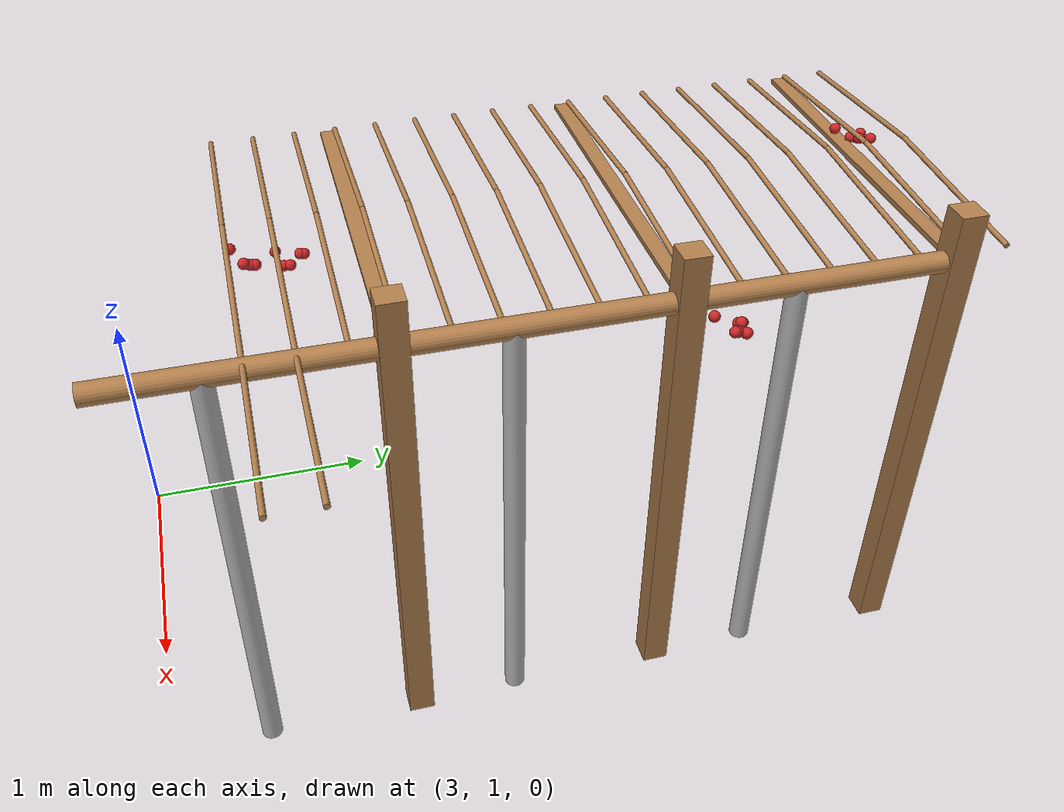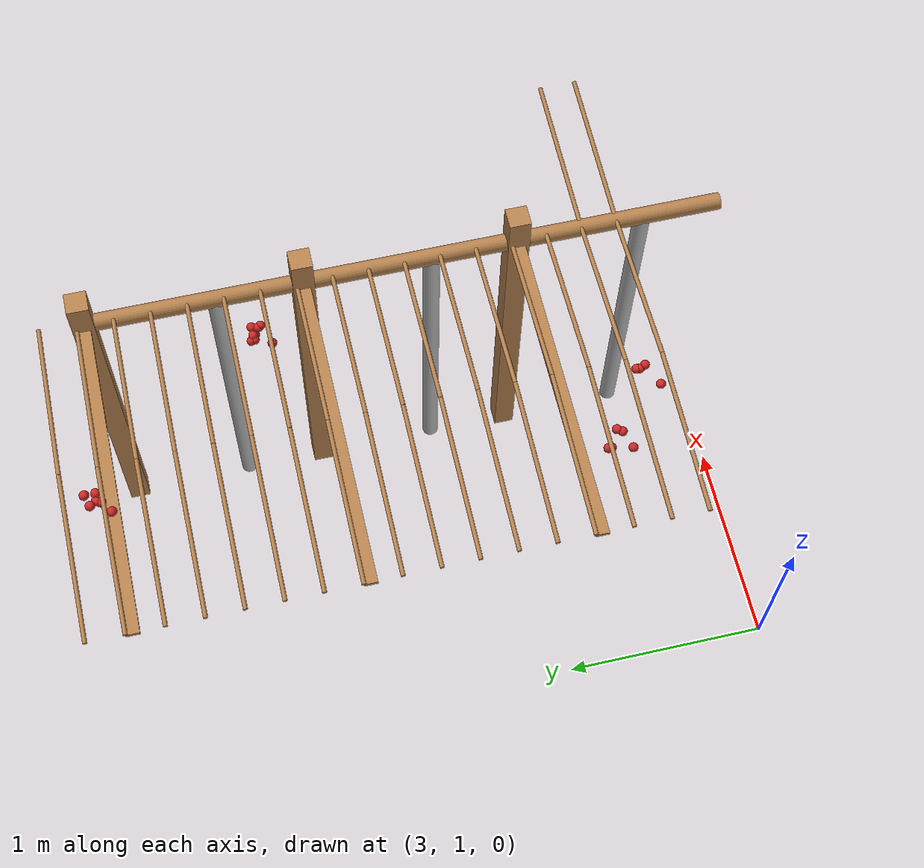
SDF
<sdf version="1.4">
 <model name="pergola">
  <include><name>post_35</name><pose>4.5 2.0 0 0 0 0</pose><uri>model://post</uri></include>
  <include><name>post_36</name><pose>4.5 3.0 0 0 0 0</pose><uri>model://post</uri></include>
  <include><name>post_37</name><pose>4.5 4.0 0 0 0 0</pose><uri>model://post</uri></include>
  <link name="beam_24">
   <pose>3.75 2.0 1.81 0 0 0</pose>
   <collision name="collision"><geometry><box><size>1.5 0.06 0.02</size></box></geometry></collision>
   <visual name="visual">
    <geometry><box><size>1.5 0.06 0.02</size></box></geometry>
    <material><script><name>Gazebo/Wood</name></script></material>
   </visual>
   <inertial>
    <mass>5</mass>
    <inertia>
     <ixx>0.0016666666666666668</ixx>
     <ixy>0.0</ixy>
     <ixz>0.0</ixz>
     <iyy>0.9390000000000001</iyy>
     <iyz>0.0</iyz>
     <izz>0.9376666666666665</izz>
    </inertia>
   </inertial>
  </link>
  <link name="beam_25">
   <pose>3.75 3.0 1.81 0 0 0</pose>
   <collision name="collision"><geometry><box><size>1.5 0.06 0.02</size></box></geometry></collision>
   <visual name="visual">
    <geometry><box><size>1.5 0.06 0.02</size></box></geometry>
    <material><script><name>Gazebo/Wood</name></script></material>
   </visual>
   <inertial>
    <mass>5</mass>
    <inertia>
     <ixx>0.0016666666666666668</ixx>
     <ixy>0.0</ixy>
     <ixz>0.0</ixz>
     <iyy>0.9390000000000001</iyy>
     <iyz>0.0</iyz>
     <izz>0.9376666666666665</izz>
    </inertia>
   </inertial>
  </link>
  <link name="beam_26">
   <pose>3.75 4.0 1.81 0 0 0</pose>
   <collision name="collision"><geometry><box><size>1.5 0.06 0.02</size></box></geometry></collision>
   <visual name="visual">
    <geometry><box><size>1.5 0.06 0.02</size></box></geometry>
    <material><script><name>Gazebo/Wood</name></script></material>
   </visual>
   <inertial>
    <mass>5</mass>
    <inertia>
     <ixx>0.0016666666666666668</ixx>
     <ixy>0.0</ixy>
     <ixz>0.0</ixz>
     <iyy>0.9390000000000001</iyy>
     <iyz>0.0</iyz>
     <izz>0.9376666666666665</izz>
    </inertia>
   </inertial>
  </link>
  <include><name>tree_31</name><pose>4.5 1.4 0 0 0 0</pose><uri>model://tree_trunk</uri></include>
  <include><name>tree_32</name><pose>4.5 2.4 0 0 0 0</pose><uri>model://tree_trunk</uri></include>
  <include><name>tree_33</name><pose>4.5 3.4 0 0 0 0</pose><uri>model://tree_trunk</uri></include>
  <link name="baseBranch_31">
   <pose>4.5 1.5 1.8 1.5707963267948966 0 0</pose>
   <collision name="collision">
    <geometry><cylinder><radius>0.04</radius><length>0.94</length></cylinder></geometry>
   </collision>
   <visual name="visual">
    <geometry><cylinder><radius>0.04</radius><length>0.94</length></cylinder></geometry>
    <material><script><name>Gazebo/WoodFloor</name></script></material>
   </visual>
   <inertial>
    <mass>10</mass>
    <inertia>
     <ixx>0.7403333333333334</ixx>
     <ixy>0.0</ixy>
     <ixz>0.0</ixz>
     <iyy>0.7403333333333334</iyy>
     <iyz>0.0</iyz>
     <izz>0.008</izz>
    </inertia>
   </inertial>
  </link>
  <link name="baseBranch_32">
   <pose>4.5 2.5 1.8 1.5707963267948966 0 0</pose>
   <collision name="collision">
    <geometry><cylinder><radius>0.04</radius><length>0.94</length></cylinder></geometry>
   </collision>
   <visual name="visual">
    <geometry><cylinder><radius>0.04</radius><length>0.94</length></cylinder></geometry>
    <material><script><name>Gazebo/WoodFloor</name></script></material>
   </visual>
   <inertial>
    <mass>10</mass>
    <inertia>
     <ixx>0.7403333333333334</ixx>
     <ixy>0.0</ixy>
     <ixz>0.0</ixz>
     <iyy>0.7403333333333334</iyy>
     <iyz>0.0</iyz>
     <izz>0.008</izz>
    </inertia>
   </inertial>
  </link>
  <link name="baseBranch_33">
   <pose>4.5 3.5 1.8 1.5707963267948966 0 0</pose>
   <collision name="collision">
    <geometry><cylinder><radius>0.04</radius><length>0.94</length></cylinder></geometry>
   </collision>
   <visual name="visual">
    <geometry><cylinder><radius>0.04</radius><length>0.94</length></cylinder></geometry>
    <material><script><name>Gazebo/WoodFloor</name></script></material>
   </visual>
   <inertial>
    <mass>10</mass>
    <inertia>
     <ixx>0.7403333333333334</ixx>
     <ixy>0.0</ixy>
     <ixz>0.0</ixz>
     <iyy>0.7403333333333334</iyy>
     <iyz>0.0</iyz>
     <izz>0.008</izz>
    </inertia>
   </inertial>
  </link>
  <link name="vine_258">
   <pose>3.375 1.53 1.85 0 1.5042281630190728 0</pose>
   <collision name="collision">
    <geometry><cylinder><radius>0.01</radius><length>0.7516648189186453</length></cylinder></geometry>
   </collision>
   <visual name="visual">
    <geometry><cylinder><radius>0.01</radius><length>0.7516648189186453</length></cylinder></geometry>
    <material><script><name>Gazebo/WoodFloor</name></script></material>
   </visual>
   <inertial>
    <mass>5</mass>
    <inertia>
     <ixx>0.23554166666666657</ixx>
     <ixy>0.0</ixy>
     <ixz>0.0</ixz>
     <iyy>0.23554166666666657</iyy>
     <iyz>0.0</iyz>
     <izz>0.00025</izz>
    </inertia>
   </inertial>
  </link>
  <link name="vine_259">
   <pose>4.125 1.53 1.85 0 -1.5042281630190728 0</pose>
   <collision name="collision">
    <geometry><cylinder><radius>0.01</radius><length>0.7516648189186453</length></cylinder></geometry>
   </collision>
   <visual name="visual">
    <geometry><cylinder><radius>0.01</radius><length>0.7516648189186453</length></cylinder></geometry>
    <material><script><name>Gazebo/WoodFloor</name></script></material>
   </visual>
   <inertial>
    <mass>5</mass>
    <inertia>
     <ixx>0.23554166666666657</ixx>
     <ixy>0.0</ixy>
     <ixz>0.0</ixz>
     <iyy>0.23554166666666657</iyy>
     <iyz>0.0</iyz>
     <izz>0.00025</izz>
    </inertia>
   </inertial>
  </link>
  <link name="vine_260">
   <pose>3.375 1.6966666666666665 1.85 0 1.5042281630190728 0</pose>
   <collision name="collision">
    <geometry><cylinder><radius>0.01</radius><length>0.7516648189186453</length></cylinder></geometry>
   </collision>
   <visual name="visual">
    <geometry><cylinder><radius>0.01</radius><length>0.7516648189186453</length></cylinder></geometry>
    <material><script><name>Gazebo/WoodFloor</name></script></material>
   </visual>
   <inertial>
    <mass>5</mass>
    <inertia>
     <ixx>0.23554166666666657</ixx>
     <ixy>0.0</ixy>
     <ixz>0.0</ixz>
     <iyy>0.23554166666666657</iyy>
     <iyz>0.0</iyz>
     <izz>0.00025</izz>
    </inertia>
   </inertial>
  </link>
  <link name="vine_261">
   <pose>4.125 1.6966666666666665 1.85 0 -1.5042281630190728 0</pose>
   <collision name="collision">
    <geometry><cylinder><radius>0.01</radius><length>0.7516648189186453</length></cylinder></geometry>
   </collision>
   <visual name="visual">
    <geometry><cylinder><radius>0.01</radius><length>0.7516648189186453</length></cylinder></geometry>
    <material><script><name>Gazebo/WoodFloor</name></script></material>
   </visual>
   <inertial>
    <mass>5</mass>
    <inertia>
     <ixx>0.23554166666666657</ixx>
     <ixy>0.0</ixy>
     <ixz>0.0</ixz>
     <iyy>0.23554166666666657</iyy>
     <iyz>0.0</iyz>
     <izz>0.00025</izz>
    </inertia>
   </inertial>
  </link>
  <link name="vine_262">
   <pose>3.375 1.8633333333333333 1.85 0 1.5042281630190728 0</pose>
   <collision name="collision">
    <geometry><cylinder><radius>0.01</radius><length>0.7516648189186453</length></cylinder></geometry>
   </collision>
   <visual name="visual">
    <geometry><cylinder><radius>0.01</radius><length>0.7516648189186453</length></cylinder></geometry>
    <material><script><name>Gazebo/WoodFloor</name></script></material>
   </visual>
   <inertial>
    <mass>5</mass>
    <inertia>
     <ixx>0.23554166666666657</ixx>
     <ixy>0.0</ixy>
     <ixz>0.0</ixz>
     <iyy>0.23554166666666657</iyy>
     <iyz>0.0</iyz>
     <izz>0.00025</izz>
    </inertia>
   </inertial>
  </link>
  <link name="vine_263">
   <pose>4.125 1.8633333333333333 1.85 0 -1.5042281630190728 0</pose>
   <collision name="collision">
    <geometry><cylinder><radius>0.01</radius><length>0.7516648189186453</length></cylinder></geometry>
   </collision>
   <visual name="visual">
    <geometry><cylinder><radius>0.01</radius><length>0.7516648189186453</length></cylinder></geometry>
    <material><script><name>Gazebo/WoodFloor</name></script></material>
   </visual>
   <inertial>
    <mass>5</mass>
    <inertia>
     <ixx>0.23554166666666657</ixx>
     <ixy>0.0</ixy>
     <ixz>0.0</ixz>
     <iyy>0.23554166666666657</iyy>
     <iyz>0.0</iyz>
     <izz>0.00025</izz>
    </inertia>
   </inertial>
  </link>
  <link name="vine_264">
   <pose>3.375 2.03 1.85 0 1.5042281630190728 0</pose>
   <collision name="collision">
    <geometry><cylinder><radius>0.01</radius><length>0.7516648189186453</length></cylinder></geometry>
   </collision>
   <visual name="visual">
    <geometry><cylinder><radius>0.01</radius><length>0.7516648189186453</length></cylinder></geometry>
    <material><script><name>Gazebo/WoodFloor</name></script></material>
   </visual>
   <inertial>
    <mass>5</mass>
    <inertia>
     <ixx>0.23554166666666657</ixx>
     <ixy>0.0</ixy>
     <ixz>0.0</ixz>
     <iyy>0.23554166666666657</iyy>
     <iyz>0.0</iyz>
     <izz>0.00025</izz>
    </inertia>
   </inertial>
  </link>
  <link name="vine_265">
   <pose>4.125 2.03 1.85 0 -1.5042281630190728 0</pose>
   <collision name="collision">
    <geometry><cylinder><radius>0.01</radius><length>0.7516648189186453</length></cylinder></geometry>
   </collision>
   <visual name="visual">
    <geometry><cylinder><radius>0.01</radius><length>0.7516648189186453</length></cylinder></geometry>
    <material><script><name>Gazebo/WoodFloor</name></script></material>
   </visual>
   <inertial>
    <mass>5</mass>
    <inertia>
     <ixx>0.23554166666666657</ixx>
     <ixy>0.0</ixy>
     <ixz>0.0</ixz>
     <iyy>0.23554166666666657</iyy>
     <iyz>0.0</iyz>
     <izz>0.00025</izz>
    </inertia>
   </inertial>
  </link>
  <link name="vine_266">
   <pose>3.375 2.1966666666666663 1.85 0 1.5042281630190728 0</pose>
   <collision name="collision">
    <geometry><cylinder><radius>0.01</radius><length>0.7516648189186453</length></cylinder></geometry>
   </collision>
   <visual name="visual">
    <geometry><cylinder><radius>0.01</radius><length>0.7516648189186453</length></cylinder></geometry>
    <material><script><name>Gazebo/WoodFloor</name></script></material>
   </visual>
   <inertial>
    <mass>5</mass>
    <inertia>
     <ixx>0.23554166666666657</ixx>
     <ixy>0.0</ixy>
     <ixz>0.0</ixz>
     <iyy>0.23554166666666657</iyy>
     <iyz>0.0</iyz>
     <izz>0.00025</izz>
    </inertia>
   </inertial>
  </link>
  <link name="vine_267">
   <pose>4.125 2.1966666666666663 1.85 0 -1.5042281630190728 0</pose>
   <collision name="collision">
    <geometry><cylinder><radius>0.01</radius><length>0.7516648189186453</length></cylinder></geometry>
   </collision>
   <visual name="visual">
    <geometry><cylinder><radius>0.01</radius><length>0.7516648189186453</length></cylinder></geometry>
    <material><script><name>Gazebo/WoodFloor</name></script></material>
   </visual>
   <inertial>
    <mass>5</mass>
    <inertia>
     <ixx>0.23554166666666657</ixx>
     <ixy>0.0</ixy>
     <ixz>0.0</ixz>
     <iyy>0.23554166666666657</iyy>
     <iyz>0.0</iyz>
     <izz>0.00025</izz>
    </inertia>
   </inertial>
  </link>
  <link name="vine_268">
   <pose>3.375 2.363333333333333 1.85 0 1.5042281630190728 0</pose>
   <collision name="collision">
    <geometry><cylinder><radius>0.01</radius><length>0.7516648189186453</length></cylinder></geometry>
   </collision>
   <visual name="visual">
    <geometry><cylinder><radius>0.01</radius><length>0.7516648189186453</length></cylinder></geometry>
    <material><script><name>Gazebo/WoodFloor</name></script></material>
   </visual>
   <inertial>
    <mass>5</mass>
    <inertia>
     <ixx>0.23554166666666657</ixx>
     <ixy>0.0</ixy>
     <ixz>0.0</ixz>
     <iyy>0.23554166666666657</iyy>
     <iyz>0.0</iyz>
     <izz>0.00025</izz>
    </inertia>
   </inertial>
  </link>
  <link name="vine_269">
   <pose>4.125 2.363333333333333 1.85 0 -1.5042281630190728 0</pose>
   <collision name="collision">
    <geometry><cylinder><radius>0.01</radius><length>0.7516648189186453</length></cylinder></geometry>
   </collision>
   <visual name="visual">
    <geometry><cylinder><radius>0.01</radius><length>0.7516648189186453</length></cylinder></geometry>
    <material><script><name>Gazebo/WoodFloor</name></script></material>
   </visual>
   <inertial>
    <mass>5</mass>
    <inertia>
     <ixx>0.23554166666666657</ixx>
     <ixy>0.0</ixy>
     <ixz>0.0</ixz>
     <iyy>0.23554166666666657</iyy>
     <iyz>0.0</iyz>
     <izz>0.00025</izz>
    </inertia>
   </inertial>
  </link>
  <link name="vine_270">
   <pose>3.375 2.53 1.85 0 1.5042281630190728 0</pose>
   <collision name="collision">
    <geometry><cylinder><radius>0.01</radius><length>0.7516648189186453</length></cylinder></geometry>
   </collision>
   <visual name="visual">
    <geometry><cylinder><radius>0.01</radius><length>0.7516648189186453</length></cylinder></geometry>
    <material><script><name>Gazebo/WoodFloor</name></script></material>
   </visual>
   <inertial>
    <mass>5</mass>
    <inertia>
     <ixx>0.23554166666666657</ixx>
     <ixy>0.0</ixy>
     <ixz>0.0</ixz>
     <iyy>0.23554166666666657</iyy>
     <iyz>0.0</iyz>
     <izz>0.00025</izz>
    </inertia>
   </inertial>
  </link>
  <link name="vine_271">
   <pose>4.125 2.53 1.85 0 -1.5042281630190728 0</pose>
   <collision name="collision">
    <geometry><cylinder><radius>0.01</radius><length>0.7516648189186453</length></cylinder></geometry>
   </collision>
   <visual name="visual">
    <geometry><cylinder><radius>0.01</radius><length>0.7516648189186453</length></cylinder></geometry>
    <material><script><name>Gazebo/WoodFloor</name></script></material>
   </visual>
   <inertial>
    <mass>5</mass>
    <inertia>
     <ixx>0.23554166666666657</ixx>
     <ixy>0.0</ixy>
     <ixz>0.0</ixz>
     <iyy>0.23554166666666657</iyy>
     <iyz>0.0</iyz>
     <izz>0.00025</izz>
    </inertia>
   </inertial>
  </link>
  <link name="vine_272">
   <pose>3.375 2.6966666666666663 1.85 0 1.5042281630190728 0</pose>
   <collision name="collision">
    <geometry><cylinder><radius>0.01</radius><length>0.7516648189186453</length></cylinder></geometry>
   </collision>
   <visual name="visual">
    <geometry><cylinder><radius>0.01</radius><length>0.7516648189186453</length></cylinder></geometry>
    <material><script><name>Gazebo/WoodFloor</name></script></material>
   </visual>
   <inertial>
    <mass>5</mass>
    <inertia>
     <ixx>0.23554166666666657</ixx>
     <ixy>0.0</ixy>
     <ixz>0.0</ixz>
     <iyy>0.23554166666666657</iyy>
     <iyz>0.0</iyz>
     <izz>0.00025</izz>
    </inertia>
   </inertial>
  </link>
  <link name="vine_273">
   <pose>4.125 2.6966666666666663 1.85 0 -1.5042281630190728 0</pose>
   <collision name="collision">
    <geometry><cylinder><radius>0.01</radius><length>0.7516648189186453</length></cylinder></geometry>
   </collision>
   <visual name="visual">
    <geometry><cylinder><radius>0.01</radius><length>0.7516648189186453</length></cylinder></geometry>
    <material><script><name>Gazebo/WoodFloor</name></script></material>
   </visual>
   <inertial>
    <mass>5</mass>
    <inertia>
     <ixx>0.23554166666666657</ixx>
     <ixy>0.0</ixy>
     <ixz>0.0</ixz>
     <iyy>0.23554166666666657</iyy>
     <iyz>0.0</iyz>
     <izz>0.00025</izz>
    </inertia>
   </inertial>
  </link>
  <link name="vine_274">
   <pose>3.375 2.863333333333333 1.85 0 1.5042281630190728 0</pose>
   <collision name="collision">
    <geometry><cylinder><radius>0.01</radius><length>0.7516648189186453</length></cylinder></geometry>
   </collision>
   <visual name="visual">
    <geometry><cylinder><radius>0.01</radius><length>0.7516648189186453</length></cylinder></geometry>
    <material><script><name>Gazebo/WoodFloor</name></script></material>
   </visual>
   <inertial>
    <mass>5</mass>
    <inertia>
     <ixx>0.23554166666666657</ixx>
     <ixy>0.0</ixy>
     <ixz>0.0</ixz>
     <iyy>0.23554166666666657</iyy>
     <iyz>0.0</iyz>
     <izz>0.00025</izz>
    </inertia>
   </inertial>
  </link>
  <link name="vine_275">
   <pose>4.125 2.863333333333333 1.85 0 -1.5042281630190728 0</pose>
   <collision name="collision">
    <geometry><cylinder><radius>0.01</radius><length>0.7516648189186453</length></cylinder></geometry>
   </collision>
   <visual name="visual">
    <geometry><cylinder><radius>0.01</radius><length>0.7516648189186453</length></cylinder></geometry>
    <material><script><name>Gazebo/WoodFloor</name></script></material>
   </visual>
   <inertial>
    <mass>5</mass>
    <inertia>
     <ixx>0.23554166666666657</ixx>
     <ixy>0.0</ixy>
     <ixz>0.0</ixz>
     <iyy>0.23554166666666657</iyy>
     <iyz>0.0</iyz>
     <izz>0.00025</izz>
    </inertia>
   </inertial>
  </link>
  <link name="vine_276">
   <pose>3.375 3.03 1.85 0 1.5042281630190728 0</pose>
   <collision name="collision">
    <geometry><cylinder><radius>0.01</radius><length>0.7516648189186453</length></cylinder></geometry>
   </collision>
   <visual name="visual">
    <geometry><cylinder><radius>0.01</radius><length>0.7516648189186453</length></cylinder></geometry>
    <material><script><name>Gazebo/WoodFloor</name></script></material>
   </visual>
   <inertial>
    <mass>5</mass>
    <inertia>
     <ixx>0.23554166666666657</ixx>
     <ixy>0.0</ixy>
     <ixz>0.0</ixz>
     <iyy>0.23554166666666657</iyy>
     <iyz>0.0</iyz>
     <izz>0.00025</izz>
    </inertia>
   </inertial>
  </link>
  <link name="vine_277">
   <pose>4.125 3.03 1.85 0 -1.5042281630190728 0</pose>
   <collision name="collision">
    <geometry><cylinder><radius>0.01</radius><length>0.7516648189186453</length></cylinder></geometry>
   </collision>
   <visual name="visual">
    <geometry><cylinder><radius>0.01</radius><length>0.7516648189186453</length></cylinder></geometry>
    <material><script><name>Gazebo/WoodFloor</name></script></material>
   </visual>
   <inertial>
    <mass>5</mass>
    <inertia>
     <ixx>0.23554166666666657</ixx>
     <ixy>0.0</ixy>
     <ixz>0.0</ixz>
     <iyy>0.23554166666666657</iyy>
     <iyz>0.0</iyz>
     <izz>0.00025</izz>
    </inertia>
   </inertial>
  </link>
  <link name="vine_278">
   <pose>3.375 3.1966666666666663 1.85 0 1.5042281630190728 0</pose>
   <collision name="collision">
    <geometry><cylinder><radius>0.01</radius><length>0.7516648189186453</length></cylinder></geometry>
   </collision>
   <visual name="visual">
    <geometry><cylinder><radius>0.01</radius><length>0.7516648189186453</length></cylinder></geometry>
    <material><script><name>Gazebo/WoodFloor</name></script></material>
   </visual>
   <inertial>
    <mass>5</mass>
    <inertia>
     <ixx>0.23554166666666657</ixx>
     <ixy>0.0</ixy>
     <ixz>0.0</ixz>
     <iyy>0.23554166666666657</iyy>
     <iyz>0.0</iyz>
     <izz>0.00025</izz>
    </inertia>
   </inertial>
  </link>
  <link name="vine_279">
   <pose>4.125 3.1966666666666663 1.85 0 -1.5042281630190728 0</pose>
   <collision name="collision">
    <geometry><cylinder><radius>0.01</radius><length>0.7516648189186453</length></cylinder></geometry>
   </collision>
   <visual name="visual">
    <geometry><cylinder><radius>0.01</radius><length>0.7516648189186453</length></cylinder></geometry>
    <material><script><name>Gazebo/WoodFloor</name></script></material>
   </visual>
   <inertial>
    <mass>5</mass>
    <inertia>
     <ixx>0.23554166666666657</ixx>
     <ixy>0.0</ixy>
     <ixz>0.0</ixz>
     <iyy>0.23554166666666657</iyy>
     <iyz>0.0</iyz>
     <izz>0.00025</izz>
    </inertia>
   </inertial>
  </link>
  <link name="vine_280">
   <pose>3.375 3.363333333333333 1.85 0 1.5042281630190728 0</pose>
   <collision name="collision">
    <geometry><cylinder><radius>0.01</radius><length>0.7516648189186453</length></cylinder></geometry>
   </collision>
   <visual name="visual">
    <geometry><cylinder><radius>0.01</radius><length>0.7516648189186453</length></cylinder></geometry>
    <material><script><name>Gazebo/WoodFloor</name></script></material>
   </visual>
   <inertial>
    <mass>5</mass>
    <inertia>
     <ixx>0.23554166666666657</ixx>
     <ixy>0.0</ixy>
     <ixz>0.0</ixz>
     <iyy>0.23554166666666657</iyy>
     <iyz>0.0</iyz>
     <izz>0.00025</izz>
    </inertia>
   </inertial>
  </link>
  <link name="vine_281">
   <pose>4.125 3.363333333333333 1.85 0 -1.5042281630190728 0</pose>
   <collision name="collision">
    <geometry><cylinder><radius>0.01</radius><length>0.7516648189186453</length></cylinder></geometry>
   </collision>
   <visual name="visual">
    <geometry><cylinder><radius>0.01</radius><length>0.7516648189186453</length></cylinder></geometry>
    <material><script><name>Gazebo/WoodFloor</name></script></material>
   </visual>
   <inertial>
    <mass>5</mass>
    <inertia>
     <ixx>0.23554166666666657</ixx>
     <ixy>0.0</ixy>
     <ixz>0.0</ixz>
     <iyy>0.23554166666666657</iyy>
     <iyz>0.0</iyz>
     <izz>0.00025</izz>
    </inertia>
   </inertial>
  </link>
  <link name="vine_282">
   <pose>3.375 3.53 1.85 0 1.5042281630190728 0</pose>
   <collision name="collision">
    <geometry><cylinder><radius>0.01</radius><length>0.7516648189186453</length></cylinder></geometry>
   </collision>
   <visual name="visual">
    <geometry><cylinder><radius>0.01</radius><length>0.7516648189186453</length></cylinder></geometry>
    <material><script><name>Gazebo/WoodFloor</name></script></material>
   </visual>
   <inertial>
    <mass>5</mass>
    <inertia>
     <ixx>0.23554166666666657</ixx>
     <ixy>0.0</ixy>
     <ixz>0.0</ixz>
     <iyy>0.23554166666666657</iyy>
     <iyz>0.0</iyz>
     <izz>0.00025</izz>
    </inertia>
   </inertial>
  </link>
  <link name="vine_283">
   <pose>4.125 3.53 1.85 0 -1.5042281630190728 0</pose>
   <collision name="collision">
    <geometry><cylinder><radius>0.01</radius><length>0.7516648189186453</length></cylinder></geometry>
   </collision>
   <visual name="visual">
    <geometry><cylinder><radius>0.01</radius><length>0.7516648189186453</length></cylinder></geometry>
    <material><script><name>Gazebo/WoodFloor</name></script></material>
   </visual>
   <inertial>
    <mass>5</mass>
    <inertia>
     <ixx>0.23554166666666657</ixx>
     <ixy>0.0</ixy>
     <ixz>0.0</ixz>
     <iyy>0.23554166666666657</iyy>
     <iyz>0.0</iyz>
     <izz>0.00025</izz>
    </inertia>
   </inertial>
  </link>
  <link name="vine_284">
   <pose>3.375 3.6966666666666663 1.85 0 1.5042281630190728 0</pose>
   <collision name="collision">
    <geometry><cylinder><radius>0.01</radius><length>0.7516648189186453</length></cylinder></geometry>
   </collision>
   <visual name="visual">
    <geometry><cylinder><radius>0.01</radius><length>0.7516648189186453</length></cylinder></geometry>
    <material><script><name>Gazebo/WoodFloor</name></script></material>
   </visual>
   <inertial>
    <mass>5</mass>
    <inertia>
     <ixx>0.23554166666666657</ixx>
     <ixy>0.0</ixy>
     <ixz>0.0</ixz>
     <iyy>0.23554166666666657</iyy>
     <iyz>0.0</iyz>
     <izz>0.00025</izz>
    </inertia>
   </inertial>
  </link>
  <link name="vine_285">
   <pose>4.125 3.6966666666666663 1.85 0 -1.5042281630190728 0</pose>
   <collision name="collision">
    <geometry><cylinder><radius>0.01</radius><length>0.7516648189186453</length></cylinder></geometry>
   </collision>
   <visual name="visual">
    <geometry><cylinder><radius>0.01</radius><length>0.7516648189186453</length></cylinder></geometry>
    <material><script><name>Gazebo/WoodFloor</name></script></material>
   </visual>
   <inertial>
    <mass>5</mass>
    <inertia>
     <ixx>0.23554166666666657</ixx>
     <ixy>0.0</ixy>
     <ixz>0.0</ixz>
     <iyy>0.23554166666666657</iyy>
     <iyz>0.0</iyz>
     <izz>0.00025</izz>
    </inertia>
   </inertial>
  </link>
  <link name="vine_286">
   <pose>3.375 3.863333333333333 1.85 0 1.5042281630190728 0</pose>
   <collision name="collision">
    <geometry><cylinder><radius>0.01</radius><length>0.7516648189186453</length></cylinder></geometry>
   </collision>
   <visual name="visual">
    <geometry><cylinder><radius>0.01</radius><length>0.7516648189186453</length></cylinder></geometry>
    <material><script><name>Gazebo/WoodFloor</name></script></material>
   </visual>
   <inertial>
    <mass>5</mass>
    <inertia>
     <ixx>0.23554166666666657</ixx>
     <ixy>0.0</ixy>
     <ixz>0.0</ixz>
     <iyy>0.23554166666666657</iyy>
     <iyz>0.0</iyz>
     <izz>0.00025</izz>
    </inertia>
   </inertial>
  </link>
  <link name="vine_287">
   <pose>4.125 3.863333333333333 1.85 0 -1.5042281630190728 0</pose>
   <collision name="collision">
    <geometry><cylinder><radius>0.01</radius><length>0.7516648189186453</length></cylinder></geometry>
   </collision>
   <visual name="visual">
    <geometry><cylinder><radius>0.01</radius><length>0.7516648189186453</length></cylinder></geometry>
    <material><script><name>Gazebo/WoodFloor</name></script></material>
   </visual>
   <inertial>
    <mass>5</mass>
    <inertia>
     <ixx>0.23554166666666657</ixx>
     <ixy>0.0</ixy>
     <ixz>0.0</ixz>
     <iyy>0.23554166666666657</iyy>
     <iyz>0.0</iyz>
     <izz>0.00025</izz>
    </inertia>
   </inertial>
  </link>
  <link name="vine_288">
   <pose>3.375 4.03 1.85 0 1.5042281630190728 0</pose>
   <collision name="collision">
    <geometry><cylinder><radius>0.01</radius><length>0.7516648189186453</length></cylinder></geometry>
   </collision>
   <visual name="visual">
    <geometry><cylinder><radius>0.01</radius><length>0.7516648189186453</length></cylinder></geometry>
    <material><script><name>Gazebo/WoodFloor</name></script></material>
   </visual>
   <inertial>
    <mass>5</mass>
    <inertia>
     <ixx>0.23554166666666657</ixx>
     <ixy>0.0</ixy>
     <ixz>0.0</ixz>
     <iyy>0.23554166666666657</iyy>
     <iyz>0.0</iyz>
     <izz>0.00025</izz>
    </inertia>
   </inertial>
  </link>
  <link name="vine_289">
   <pose>4.125 4.03 1.85 0 -1.5042281630190728 0</pose>
   <collision name="collision">
    <geometry><cylinder><radius>0.01</radius><length>0.7516648189186453</length></cylinder></geometry>
   </collision>
   <visual name="visual">
    <geometry><cylinder><radius>0.01</radius><length>0.7516648189186453</length></cylinder></geometry>
    <material><script><name>Gazebo/WoodFloor</name></script></material>
   </visual>
   <inertial>
    <mass>5</mass>
    <inertia>
     <ixx>0.23554166666666657</ixx>
     <ixy>0.0</ixy>
     <ixz>0.0</ixz>
     <iyy>0.23554166666666657</iyy>
     <iyz>0.0</iyz>
     <izz>0.00025</izz>
    </inertia>
   </inertial>
  </link>
  <link name="vine_290">
   <pose>3.375 4.196666666666666 1.85 0 1.5042281630190728 0</pose>
   <collision name="collision">
    <geometry><cylinder><radius>0.01</radius><length>0.7516648189186453</length></cylinder></geometry>
   </collision>
   <visual name="visual">
    <geometry><cylinder><radius>0.01</radius><length>0.7516648189186453</length></cylinder></geometry>
    <material><script><name>Gazebo/WoodFloor</name></script></material>
   </visual>
   <inertial>
    <mass>5</mass>
    <inertia>
     <ixx>0.23554166666666657</ixx>
     <ixy>0.0</ixy>
     <ixz>0.0</ixz>
     <iyy>0.23554166666666657</iyy>
     <iyz>0.0</iyz>
     <izz>0.00025</izz>
    </inertia>
   </inertial>
  </link>
  <link name="vine_291">
   <pose>4.125 4.196666666666666 1.85 0 -1.5042281630190728 0</pose>
   <collision name="collision">
    <geometry><cylinder><radius>0.01</radius><length>0.7516648189186453</length></cylinder></geometry>
   </collision>
   <visual name="visual">
    <geometry><cylinder><radius>0.01</radius><length>0.7516648189186453</length></cylinder></geometry>
    <material><script><name>Gazebo/WoodFloor</name></script></material>
   </visual>
   <inertial>
    <mass>5</mass>
    <inertia>
     <ixx>0.23554166666666657</ixx>
     <ixy>0.0</ixy>
     <ixz>0.0</ixz>
     <iyy>0.23554166666666657</iyy>
     <iyz>0.0</iyz>
     <izz>0.00025</izz>
    </inertia>
   </inertial>
  </link>
  <link name="vine_378">
   <pose>4.875 1.53 1.85 0 1.5042281630190728 0</pose>
   <collision name="collision">
    <geometry><cylinder><radius>0.01</radius><length>0.7516648189186453</length></cylinder></geometry>
   </collision>
   <visual name="visual">
    <geometry><cylinder><radius>0.01</radius><length>0.7516648189186453</length></cylinder></geometry>
    <material><script><name>Gazebo/WoodFloor</name></script></material>
   </visual>
   <inertial>
    <mass>5</mass>
    <inertia>
     <ixx>0.23554166666666657</ixx>
     <ixy>0.0</ixy>
     <ixz>0.0</ixz>
     <iyy>0.23554166666666657</iyy>
     <iyz>0.0</iyz>
     <izz>0.00025</izz>
    </inertia>
   </inertial>
  </link>
  <link name="vine_380">
   <pose>4.875 1.6966666666666665 1.85 0 1.5042281630190728 0</pose>
   <collision name="collision">
    <geometry><cylinder><radius>0.01</radius><length>0.7516648189186453</length></cylinder></geometry>
   </collision>
   <visual name="visual">
    <geometry><cylinder><radius>0.01</radius><length>0.7516648189186453</length></cylinder></geometry>
    <material><script><name>Gazebo/WoodFloor</name></script></material>
   </visual>
   <inertial>
    <mass>5</mass>
    <inertia>
     <ixx>0.23554166666666657</ixx>
     <ixy>0.0</ixy>
     <ixz>0.0</ixz>
     <iyy>0.23554166666666657</iyy>
     <iyz>0.0</iyz>
     <izz>0.00025</izz>
    </inertia>
   </inertial>
  </link>
  <link name="fruit_38">
   <pose>4.335423419960089 3.1848485819585206 1.590116173765595 0 0 0</pose>
   <collision name="fruit_collision_38"><geometry><sphere><radius>0.022</radius></sphere></geometry></collision>
   <visual name="visual">
    <geometry><sphere><radius>0.022</radius></sphere></geometry>
    <material><script><name>Gazebo/Red</name></script></material>
   </visual>
   <inertial>
    <mass>0.05</mass>
    <inertia>
     <ixx>9.679999999999999e-06</ixx>
     <ixy>0.0</ixy>
     <ixz>0.0</ixz>
     <iyy>9.679999999999999e-06</iyy>
     <iyz>0.0</iyz>
     <izz>9.679999999999999e-06</izz>
    </inertia>
   </inertial>
   <sensor name="fruit_contact_38" type="contact">
    <contact><collision>fruit_collision_38</collision></contact>
   </sensor>
  </link>
  <link name="fruit_64">
   <pose>3.6714080986644655 1.5410054252248473 1.7311431002158562 0 0 0</pose>
   <collision name="fruit_collision_64"><geometry><sphere><radius>0.022</radius></sphere></geometry></collision>
   <visual name="visual">
    <geometry><sphere><radius>0.022</radius></sphere></geometry>
    <material><script><name>Gazebo/Red</name></script></material>
   </visual>
   <inertial>
    <mass>0.05</mass>
    <inertia>
     <ixx>9.679999999999999e-06</ixx>
     <ixy>0.0</ixy>
     <ixz>0.0</ixz>
     <iyy>9.679999999999999e-06</iyy>
     <iyz>0.0</iyz>
     <izz>9.679999999999999e-06</izz>
    </inertia>
   </inertial>
   <sensor name="fruit_contact_64" type="contact">
    <contact><collision>fruit_collision_64</collision></contact>
   </sensor>
  </link>
  <link name="fruit_65">
   <pose>3.4674725906730326 1.707884358829524 1.569945892971979 0 0 0</pose>
   <collision name="fruit_collision_65"><geometry><sphere><radius>0.022</radius></sphere></geometry></collision>
   <visual name="visual">
    <geometry><sphere><radius>0.022</radius></sphere></geometry>
    <material><script><name>Gazebo/Red</name></script></material>
   </visual>
   <inertial>
    <mass>0.05</mass>
    <inertia>
     <ixx>9.679999999999999e-06</ixx>
     <ixy>0.0</ixy>
     <ixz>0.0</ixz>
     <iyy>9.679999999999999e-06</iyy>
     <iyz>0.0</iyz>
     <izz>9.679999999999999e-06</izz>
    </inertia>
   </inertial>
   <sensor name="fruit_contact_65" type="contact">
    <contact><collision>fruit_collision_65</collision></contact>
   </sensor>
  </link>
  <link name="fruit_96">
   <pose>3.549625822488977 4.001952716692693 1.8428451010787714 0 0 0</pose>
   <collision name="fruit_collision_96"><geometry><sphere><radius>0.022</radius></sphere></geometry></collision>
   <visual name="visual">
    <geometry><sphere><radius>0.022</radius></sphere></geometry>
    <material><script><name>Gazebo/Red</name></script></material>
   </visual>
   <inertial>
    <mass>0.05</mass>
    <inertia>
     <ixx>9.679999999999999e-06</ixx>
     <ixy>0.0</ixy>
     <ixz>0.0</ixz>
     <iyy>9.679999999999999e-06</iyy>
     <iyz>0.0</iyz>
     <izz>9.679999999999999e-06</izz>
    </inertia>
   </inertial>
   <sensor name="fruit_contact_96" type="contact">
    <contact><collision>fruit_collision_96</collision></contact>
   </sensor>
  </link>
  <link name="fruit_132">
   <pose>3.599482417378005 4.089870501596062 1.8333539667055923 0 0 0</pose>
   <collision name="fruit_collision_132"><geometry><sphere><radius>0.022</radius></sphere></geometry></collision>
   <visual name="visual">
    <geometry><sphere><radius>0.022</radius></sphere></geometry>
    <material><script><name>Gazebo/Red</name></script></material>
   </visual>
   <inertial>
    <mass>0.05</mass>
    <inertia>
     <ixx>9.679999999999999e-06</ixx>
     <ixy>0.0</ixy>
     <ixz>0.0</ixz>
     <iyy>9.679999999999999e-06</iyy>
     <iyz>0.0</iyz>
     <izz>9.679999999999999e-06</izz>
    </inertia>
   </inertial>
   <sensor name="fruit_contact_132" type="contact">
    <contact><collision>fruit_collision_132</collision></contact>
   </sensor>
  </link>
  <link name="fruit_152">
   <pose>3.616607688340667 4.061405166022053 1.8292020639735738 0 0 0</pose>
   <collision name="fruit_collision_152"><geometry><sphere><radius>0.022</radius></sphere></geometry></collision>
   <visual name="visual">
    <geometry><sphere><radius>0.022</radius></sphere></geometry>
    <material><script><name>Gazebo/Red</name></script></material>
   </visual>
   <inertial>
    <mass>0.05</mass>
    <inertia>
     <ixx>9.679999999999999e-06</ixx>
     <ixy>0.0</ixy>
     <ixz>0.0</ixz>
     <iyy>9.679999999999999e-06</iyy>
     <iyz>0.0</iyz>
     <izz>9.679999999999999e-06</izz>
    </inertia>
   </inertial>
   <sensor name="fruit_contact_152" type="contact">
    <contact><collision>fruit_collision_152</collision></contact>
   </sensor>
  </link>
  <link name="fruit_168">
   <pose>4.433877589468143 3.234143545702433 1.5823903046974204 0 0 0</pose>
   <collision name="fruit_collision_168"><geometry><sphere><radius>0.022</radius></sphere></geometry></collision>
   <visual name="visual">
    <geometry><sphere><radius>0.022</radius></sphere></geometry>
    <material><script><name>Gazebo/Red</name></script></material>
   </visual>
   <inertial>
    <mass>0.05</mass>
    <inertia>
     <ixx>9.679999999999999e-06</ixx>
     <ixy>0.0</ixy>
     <ixz>0.0</ixz>
     <iyy>9.679999999999999e-06</iyy>
     <iyz>0.0</iyz>
     <izz>9.679999999999999e-06</izz>
    </inertia>
   </inertial>
   <sensor name="fruit_contact_168" type="contact">
    <contact><collision>fruit_collision_168</collision></contact>
   </sensor>
  </link>
  <link name="fruit_175">
   <pose>3.6523950132375136 4.107924218365961 1.834602604676645 0 0 0</pose>
   <collision name="fruit_collision_175"><geometry><sphere><radius>0.022</radius></sphere></geometry></collision>
   <visual name="visual">
    <geometry><sphere><radius>0.022</radius></sphere></geometry>
    <material><script><name>Gazebo/Red</name></script></material>
   </visual>
   <inertial>
    <mass>0.05</mass>
    <inertia>
     <ixx>9.679999999999999e-06</ixx>
     <ixy>0.0</ixy>
     <ixz>0.0</ixz>
     <iyy>9.679999999999999e-06</iyy>
     <iyz>0.0</iyz>
     <izz>9.679999999999999e-06</izz>
    </inertia>
   </inertial>
   <sensor name="fruit_contact_175" type="contact">
    <contact><collision>fruit_collision_175</collision></contact>
   </sensor>
  </link>
  <link name="fruit_198">
   <pose>3.6086193467879437 4.0415743128843475 1.8273307856728849 0 0 0</pose>
   <collision name="fruit_collision_198"><geometry><sphere><radius>0.022</radius></sphere></geometry></collision>
   <visual name="visual">
    <geometry><sphere><radius>0.022</radius></sphere></geometry>
    <material><script><name>Gazebo/Red</name></script></material>
   </visual>
   <inertial>
    <mass>0.05</mass>
    <inertia>
     <ixx>9.679999999999999e-06</ixx>
     <ixy>0.0</ixy>
     <ixz>0.0</ixz>
     <iyy>9.679999999999999e-06</iyy>
     <iyz>0.0</iyz>
     <izz>9.679999999999999e-06</izz>
    </inertia>
   </inertial>
   <sensor name="fruit_contact_198" type="contact">
    <contact><collision>fruit_collision_198</collision></contact>
   </sensor>
  </link>
  <link name="fruit_269">
   <pose>4.3934129614994255 3.263917671383097 1.5885344081519557 0 0 0</pose>
   <collision name="fruit_collision_269"><geometry><sphere><radius>0.022</radius></sphere></geometry></collision>
   <visual name="visual">
    <geometry><sphere><radius>0.022</radius></sphere></geometry>
    <material><script><name>Gazebo/Red</name></script></material>
   </visual>
   <inertial>
    <mass>0.05</mass>
    <inertia>
     <ixx>9.679999999999999e-06</ixx>
     <ixy>0.0</ixy>
     <ixz>0.0</ixz>
     <iyy>9.679999999999999e-06</iyy>
     <iyz>0.0</iyz>
     <izz>9.679999999999999e-06</izz>
    </inertia>
   </inertial>
   <sensor name="fruit_contact_269" type="contact">
    <contact><collision>fruit_collision_269</collision></contact>
   </sensor>
  </link>
  <link name="fruit_275">
   <pose>4.444705006954283 3.2645698191313386 1.5782202929006923 0 0 0</pose>
   <collision name="fruit_collision_275"><geometry><sphere><radius>0.022</radius></sphere></geometry></collision>
   <visual name="visual">
    <geometry><sphere><radius>0.022</radius></sphere></geometry>
    <material><script><name>Gazebo/Red</name></script></material>
   </visual>
   <inertial>
    <mass>0.05</mass>
    <inertia>
     <ixx>9.679999999999999e-06</ixx>
     <ixy>0.0</ixy>
     <ixz>0.0</ixz>
     <iyy>9.679999999999999e-06</iyy>
     <iyz>0.0</iyz>
     <izz>9.679999999999999e-06</izz>
    </inertia>
   </inertial>
   <sensor name="fruit_contact_275" type="contact">
    <contact><collision>fruit_collision_275</collision></contact>
   </sensor>
  </link>
  <link name="fruit_306">
   <pose>3.6491577180856987 4.058625719624857 1.8398103127962442 0 0 0</pose>
   <collision name="fruit_collision_306"><geometry><sphere><radius>0.022</radius></sphere></geometry></collision>
   <visual name="visual">
    <geometry><sphere><radius>0.022</radius></sphere></geometry>
    <material><script><name>Gazebo/Red</name></script></material>
   </visual>
   <inertial>
    <mass>0.05</mass>
    <inertia>
     <ixx>9.679999999999999e-06</ixx>
     <ixy>0.0</ixy>
     <ixz>0.0</ixz>
     <iyy>9.679999999999999e-06</iyy>
     <iyz>0.0</iyz>
     <izz>9.679999999999999e-06</izz>
    </inertia>
   </inertial>
   <sensor name="fruit_contact_306" type="contact">
    <contact><collision>fruit_collision_306</collision></contact>
   </sensor>
  </link>
  <link name="fruit_307">
   <pose>4.403976365410322 3.2545906837327925 1.5705957933682868 0 0 0</pose>
   <collision name="fruit_collision_307"><geometry><sphere><radius>0.022</radius></sphere></geometry></collision>
   <visual name="visual">
    <geometry><sphere><radius>0.022</radius></sphere></geometry>
    <material><script><name>Gazebo/Red</name></script></material>
   </visual>
   <inertial>
    <mass>0.05</mass>
    <inertia>
     <ixx>9.679999999999999e-06</ixx>
     <ixy>0.0</ixy>
     <ixz>0.0</ixz>
     <iyy>9.679999999999999e-06</iyy>
     <iyz>0.0</iyz>
     <izz>9.679999999999999e-06</izz>
    </inertia>
   </inertial>
   <sensor name="fruit_contact_307" type="contact">
    <contact><collision>fruit_collision_307</collision></contact>
   </sensor>
  </link>
  <link name="fruit_325">
   <pose>4.375760842315089 3.2763670338548674 1.5736724659820935 0 0 0</pose>
   <collision name="fruit_collision_325"><geometry><sphere><radius>0.022</radius></sphere></geometry></collision>
   <visual name="visual">
    <geometry><sphere><radius>0.022</radius></sphere></geometry>
    <material><script><name>Gazebo/Red</name></script></material>
   </visual>
   <inertial>
    <mass>0.05</mass>
    <inertia>
     <ixx>9.679999999999999e-06</ixx>
     <ixy>0.0</ixy>
     <ixz>0.0</ixz>
     <iyy>9.679999999999999e-06</iyy>
     <iyz>0.0</iyz>
     <izz>9.679999999999999e-06</izz>
    </inertia>
   </inertial>
   <sensor name="fruit_contact_325" type="contact">
    <contact><collision>fruit_collision_325</collision></contact>
   </sensor>
  </link>
  <link name="fruit_346">
   <pose>4.439546292502227 3.221814774617884 1.5869935710801975 0 0 0</pose>
   <collision name="fruit_collision_346"><geometry><sphere><radius>0.022</radius></sphere></geometry></collision>
   <visual name="visual">
    <geometry><sphere><radius>0.022</radius></sphere></geometry>
    <material><script><name>Gazebo/Red</name></script></material>
   </visual>
   <inertial>
    <mass>0.05</mass>
    <inertia>
     <ixx>9.679999999999999e-06</ixx>
     <ixy>0.0</ixy>
     <ixz>0.0</ixz>
     <iyy>9.679999999999999e-06</iyy>
     <iyz>0.0</iyz>
     <izz>9.679999999999999e-06</izz>
    </inertia>
   </inertial>
   <sensor name="fruit_contact_346" type="contact">
    <contact><collision>fruit_collision_346</collision></contact>
   </sensor>
  </link>
  <link name="fruit_366">
   <pose>3.7806064612872694 1.5834155786537991 1.7298707868508574 0 0 0</pose>
   <collision name="fruit_collision_366"><geometry><sphere><radius>0.022</radius></sphere></geometry></collision>
   <visual name="visual">
    <geometry><sphere><radius>0.022</radius></sphere></geometry>
    <material><script><name>Gazebo/Red</name></script></material>
   </visual>
   <inertial>
    <mass>0.05</mass>
    <inertia>
     <ixx>9.679999999999999e-06</ixx>
     <ixy>0.0</ixy>
     <ixz>0.0</ixz>
     <iyy>9.679999999999999e-06</iyy>
     <iyz>0.0</iyz>
     <izz>9.679999999999999e-06</izz>
    </inertia>
   </inertial>
   <sensor name="fruit_contact_366" type="contact">
    <contact><collision>fruit_collision_366</collision></contact>
   </sensor>
  </link>
  <link name="fruit_376">
   <pose>3.775139984208076 1.62314228362314 1.7162824181120209 0 0 0</pose>
   <collision name="fruit_collision_376"><geometry><sphere><radius>0.022</radius></sphere></geometry></collision>
   <visual name="visual">
    <geometry><sphere><radius>0.022</radius></sphere></geometry>
    <material><script><name>Gazebo/Red</name></script></material>
   </visual>
   <inertial>
    <mass>0.05</mass>
    <inertia>
     <ixx>9.679999999999999e-06</ixx>
     <ixy>0.0</ixy>
     <ixz>0.0</ixz>
     <iyy>9.679999999999999e-06</iyy>
     <iyz>0.0</iyz>
     <izz>9.679999999999999e-06</izz>
    </inertia>
   </inertial>
   <sensor name="fruit_contact_376" type="contact">
    <contact><collision>fruit_collision_376</collision></contact>
   </sensor>
  </link>
  <link name="fruit_387">
   <pose>4.3772902355126515 3.260713369286425 1.5750272383726673 0 0 0</pose>
   <collision name="fruit_collision_387"><geometry><sphere><radius>0.022</radius></sphere></geometry></collision>
   <visual name="visual">
    <geometry><sphere><radius>0.022</radius></sphere></geometry>
    <material><script><name>Gazebo/Red</name></script></material>
   </visual>
   <inertial>
    <mass>0.05</mass>
    <inertia>
     <ixx>9.679999999999999e-06</ixx>
     <ixy>0.0</ixy>
     <ixz>0.0</ixz>
     <iyy>9.679999999999999e-06</iyy>
     <iyz>0.0</iyz>
     <izz>9.679999999999999e-06</izz>
    </inertia>
   </inertial>
   <sensor name="fruit_contact_387" type="contact">
    <contact><collision>fruit_collision_387</collision></contact>
   </sensor>
  </link>
  <link name="fruit_392">
   <pose>3.572187922363068 1.7556716907654653 1.5660452926148032 0 0 0</pose>
   <collision name="fruit_collision_392"><geometry><sphere><radius>0.022</radius></sphere></geometry></collision>
   <visual name="visual">
    <geometry><sphere><radius>0.022</radius></sphere></geometry>
    <material><script><name>Gazebo/Red</name></script></material>
   </visual>
   <inertial>
    <mass>0.05</mass>
    <inertia>
     <ixx>9.679999999999999e-06</ixx>
     <ixy>0.0</ixy>
     <ixz>0.0</ixz>
     <iyy>9.679999999999999e-06</iyy>
     <iyz>0.0</iyz>
     <izz>9.679999999999999e-06</izz>
    </inertia>
   </inertial>
   <sensor name="fruit_contact_392" type="contact">
    <contact><collision>fruit_collision_392</collision></contact>
   </sensor>
  </link>
  <link name="fruit_406">
   <pose>3.773300895343939 1.6066057310940625 1.7176089991306245 0 0 0</pose>
   <collision name="fruit_collision_406"><geometry><sphere><radius>0.022</radius></sphere></geometry></collision>
   <visual name="visual">
    <geometry><sphere><radius>0.022</radius></sphere></geometry>
    <material><script><name>Gazebo/Red</name></script></material>
   </visual>
   <inertial>
    <mass>0.05</mass>
    <inertia>
     <ixx>9.679999999999999e-06</ixx>
     <ixy>0.0</ixy>
     <ixz>0.0</ixz>
     <iyy>9.679999999999999e-06</iyy>
     <iyz>0.0</iyz>
     <izz>9.679999999999999e-06</izz>
    </inertia>
   </inertial>
   <sensor name="fruit_contact_406" type="contact">
    <contact><collision>fruit_collision_406</collision></contact>
   </sensor>
  </link>
  <link name="fruit_423">
   <pose>3.4926535014906297 1.816481890203636 1.5596786521398276 0 0 0</pose>
   <collision name="fruit_collision_423"><geometry><sphere><radius>0.022</radius></sphere></geometry></collision>
   <visual name="visual">
    <geometry><sphere><radius>0.022</radius></sphere></geometry>
    <material><script><name>Gazebo/Red</name></script></material>
   </visual>
   <inertial>
    <mass>0.05</mass>
    <inertia>
     <ixx>9.679999999999999e-06</ixx>
     <ixy>0.0</ixy>
     <ixz>0.0</ixz>
     <iyy>9.679999999999999e-06</iyy>
     <iyz>0.0</iyz>
     <izz>9.679999999999999e-06</izz>
    </inertia>
   </inertial>
   <sensor name="fruit_contact_423" type="contact">
    <contact><collision>fruit_collision_423</collision></contact>
   </sensor>
  </link>
  <link name="fruit_439">
   <pose>3.4910591053686795 1.8010725700044348 1.5611284455073815 0 0 0</pose>
   <collision name="fruit_collision_439"><geometry><sphere><radius>0.022</radius></sphere></geometry></collision>
   <visual name="visual">
    <geometry><sphere><radius>0.022</radius></sphere></geometry>
    <material><script><name>Gazebo/Red</name></script></material>
   </visual>
   <inertial>
    <mass>0.05</mass>
    <inertia>
     <ixx>9.679999999999999e-06</ixx>
     <ixy>0.0</ixy>
     <ixz>0.0</ixz>
     <iyy>9.679999999999999e-06</iyy>
     <iyz>0.0</iyz>
     <izz>9.679999999999999e-06</izz>
    </inertia>
   </inertial>
   <sensor name="fruit_contact_439" type="contact">
    <contact><collision>fruit_collision_439</collision></contact>
   </sensor>
  </link>
  <link name="fruit_497">
   <pose>3.559181828899227 1.7312992811529524 1.5589203713816866 0 0 0</pose>
   <collision name="fruit_collision_497"><geometry><sphere><radius>0.022</radius></sphere></geometry></collision>
   <visual name="visual">
    <geometry><sphere><radius>0.022</radius></sphere></geometry>
    <material><script><name>Gazebo/Red</name></script></material>
   </visual>
   <inertial>
    <mass>0.05</mass>
    <inertia>
     <ixx>9.679999999999999e-06</ixx>
     <ixy>0.0</ixy>
     <ixz>0.0</ixz>
     <iyy>9.679999999999999e-06</iyy>
     <iyz>0.0</iyz>
     <izz>9.679999999999999e-06</izz>
    </inertia>
   </inertial>
   <sensor name="fruit_contact_497" type="contact">
    <contact><collision>fruit_collision_497</collision></contact>
   </sensor>
  </link>
 </model>
</sdf>
